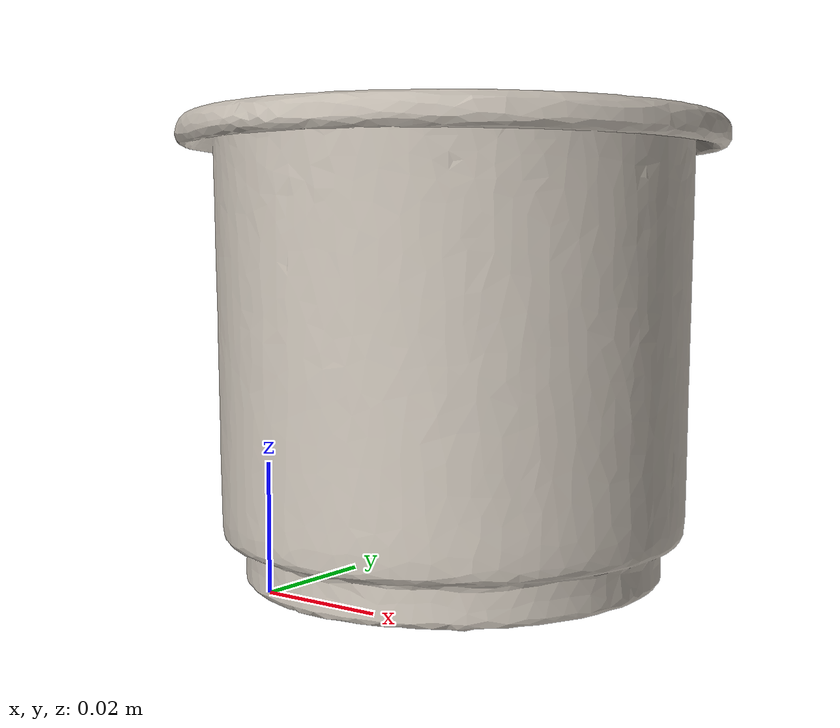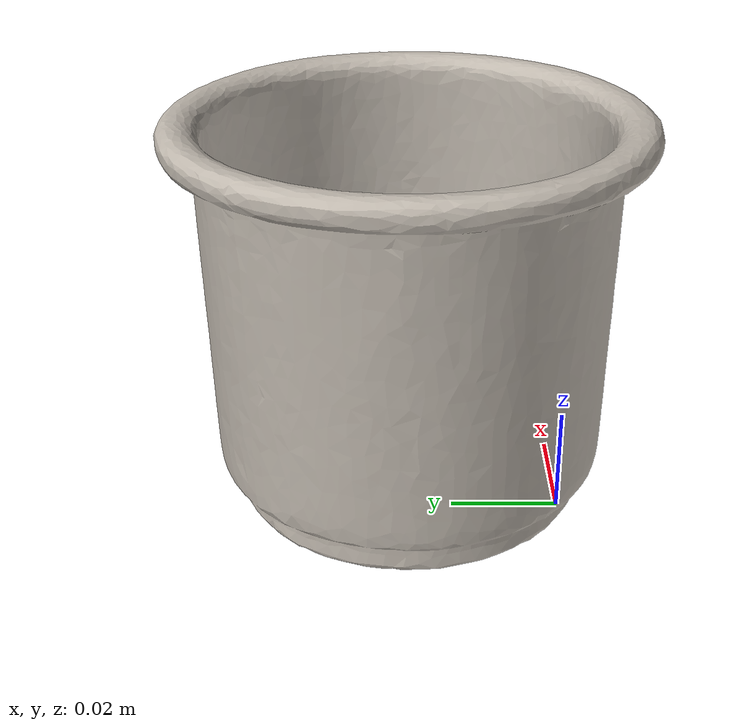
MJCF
<mujoco model="cups_g">
  <compiler angle="radian" meshdir="assets" texturedir="assets"/>
    <default>
        <default class="ycb_col">
            <geom contype="1" conaffinity="1" group="3" rgba=".4 .5 .6 1"/>
        </default>
        <default class="ycb_viz">
            <geom contype="0" conaffinity="0" type="mesh" mass="0"/>
        </default>
    </default>
  <asset>
    <texture type="2d" name="g_cups_tex" file="texture_map.png"/>
    <material name="g_cups_mat" texture="g_cups_tex" specular="0.5" shininess="0.5"/>
    <mesh file="textured.obj" name="g_cups"/>
    <mesh file="textured_collision_0.obj" name="g_cups_collision_0"/>
    <mesh file="textured_collision_1.obj" name="g_cups_collision_1"/>
    <mesh file="textured_collision_2.obj" name="g_cups_collision_2"/>
    <mesh file="textured_collision_3.obj" name="g_cups_collision_3"/>
    <mesh file="textured_collision_4.obj" name="g_cups_collision_4"/>
    <mesh file="textured_collision_5.obj" name="g_cups_collision_5"/>
    <mesh file="textured_collision_6.obj" name="g_cups_collision_6"/>
    <mesh file="textured_collision_7.obj" name="g_cups_collision_7"/>
    <mesh file="textured_collision_8.obj" name="g_cups_collision_8"/>
    <mesh file="textured_collision_9.obj" name="g_cups_collision_9"/>
    <mesh file="textured_collision_10.obj" name="g_cups_collision_10"/>
    <mesh file="textured_collision_11.obj" name="g_cups_collision_11"/>
    <mesh file="textured_collision_12.obj" name="g_cups_collision_12"/>
    <mesh file="textured_collision_13.obj" name="g_cups_collision_13"/>
    <mesh file="textured_collision_14.obj" name="g_cups_collision_14"/>
    <mesh file="textured_collision_15.obj" name="g_cups_collision_15"/>
    <mesh file="textured_collision_16.obj" name="g_cups_collision_16"/>
    <mesh file="textured_collision_17.obj" name="g_cups_collision_17"/>
    <mesh file="textured_collision_18.obj" name="g_cups_collision_18"/>
    <mesh file="textured_collision_19.obj" name="g_cups_collision_19"/>
    <mesh file="textured_collision_20.obj" name="g_cups_collision_20"/>
    <mesh file="textured_collision_21.obj" name="g_cups_collision_21"/>
    <mesh file="textured_collision_22.obj" name="g_cups_collision_22"/>
    <mesh file="textured_collision_23.obj" name="g_cups_collision_23"/>
    <mesh file="textured_collision_24.obj" name="g_cups_collision_24"/>
    <mesh file="textured_collision_25.obj" name="g_cups_collision_25"/>
    <mesh file="textured_collision_26.obj" name="g_cups_collision_26"/>
    <mesh file="textured_collision_27.obj" name="g_cups_collision_27"/>
    <mesh file="textured_collision_28.obj" name="g_cups_collision_28"/>
    <mesh file="textured_collision_29.obj" name="g_cups_collision_29"/>
    <mesh file="textured_collision_30.obj" name="g_cups_collision_30"/>
    <mesh file="textured_collision_31.obj" name="g_cups_collision_31"/>
    <mesh file="textured_collision_32.obj" name="g_cups_collision_32"/>
    <mesh file="textured_collision_33.obj" name="g_cups_collision_33"/>
    <mesh file="textured_collision_34.obj" name="g_cups_collision_34"/>
    <mesh file="textured_collision_35.obj" name="g_cups_collision_35"/>
    <mesh file="textured_collision_36.obj" name="g_cups_collision_36"/>
    <mesh file="textured_collision_37.obj" name="g_cups_collision_37"/>
    <mesh file="textured_collision_38.obj" name="g_cups_collision_38"/>
    <mesh file="textured_collision_39.obj" name="g_cups_collision_39"/>
    <mesh file="textured_collision_40.obj" name="g_cups_collision_40"/>
    <mesh file="textured_collision_41.obj" name="g_cups_collision_41"/>
    <mesh file="textured_collision_42.obj" name="g_cups_collision_42"/>
    <mesh file="textured_collision_43.obj" name="g_cups_collision_43"/>
    <mesh file="textured_collision_44.obj" name="g_cups_collision_44"/>
    <mesh file="textured_collision_45.obj" name="g_cups_collision_45"/>
    <mesh file="textured_collision_46.obj" name="g_cups_collision_46"/>
    <mesh file="textured_collision_47.obj" name="g_cups_collision_47"/>
  </asset>
  <worldbody>
      <geom material="g_cups_mat" mesh="g_cups" class="ycb_viz"/>
      <geom mesh="g_cups_collision_0" class="ycb_col" conaffinity="1" condim="4" friction="0.1 0.1 0.1" mass="0.0002042330107891797" rgba="1 1 1 1" solimp="0.99 0.99 0.01" solref=".001 0.1" type="mesh" group="3"/>
      <geom mesh="g_cups_collision_1" class="ycb_col" conaffinity="1" condim="4" friction="0.1 0.1 0.1" mass="0.00035405280935947396" rgba="1 1 1 1" solimp="0.99 0.99 0.01" solref=".001 0.1" type="mesh" group="3"/>
      <geom mesh="g_cups_collision_2" class="ycb_col" conaffinity="1" condim="4" friction="0.1 0.1 0.1" mass="0.00018009908160218605" rgba="1 1 1 1" solimp="0.99 0.99 0.01" solref=".001 0.1" type="mesh" group="3"/>
      <geom mesh="g_cups_collision_3" class="ycb_col" conaffinity="1" condim="4" friction="0.1 0.1 0.1" mass="0.00034874861607686624" rgba="1 1 1 1" solimp="0.99 0.99 0.01" solref=".001 0.1" type="mesh" group="3"/>
      <geom mesh="g_cups_collision_4" class="ycb_col" conaffinity="1" condim="4" friction="0.1 0.1 0.1" mass="0.0013445690491667968" rgba="1 1 1 1" solimp="0.99 0.99 0.01" solref=".001 0.1" type="mesh" group="3"/>
      <geom mesh="g_cups_collision_5" class="ycb_col" conaffinity="1" condim="4" friction="0.1 0.1 0.1" mass="0.0010697302915126312" rgba="1 1 1 1" solimp="0.99 0.99 0.01" solref=".001 0.1" type="mesh" group="3"/>
      <geom mesh="g_cups_collision_6" class="ycb_col" conaffinity="1" condim="4" friction="0.1 0.1 0.1" mass="0.0011422643360491833" rgba="1 1 1 1" solimp="0.99 0.99 0.01" solref=".001 0.1" type="mesh" group="3"/>
      <geom mesh="g_cups_collision_7" class="ycb_col" conaffinity="1" condim="4" friction="0.1 0.1 0.1" mass="0.0004703729642709619" rgba="1 1 1 1" solimp="0.99 0.99 0.01" solref=".001 0.1" type="mesh" group="3"/>
      <geom mesh="g_cups_collision_8" class="ycb_col" conaffinity="1" condim="4" friction="0.1 0.1 0.1" mass="0.0003146623120150026" rgba="1 1 1 1" solimp="0.99 0.99 0.01" solref=".001 0.1" type="mesh" group="3"/>
      <geom mesh="g_cups_collision_9" class="ycb_col" conaffinity="1" condim="4" friction="0.1 0.1 0.1" mass="0.00035825178270348354" rgba="1 1 1 1" solimp="0.99 0.99 0.01" solref=".001 0.1" type="mesh" group="3"/>
      <geom mesh="g_cups_collision_10" class="ycb_col" conaffinity="1" condim="4" friction="0.1 0.1 0.1" mass="0.0003077000070613198" rgba="1 1 1 1" solimp="0.99 0.99 0.01" solref=".001 0.1" type="mesh" group="3"/>
      <geom mesh="g_cups_collision_11" class="ycb_col" conaffinity="1" condim="4" friction="0.1 0.1 0.1" mass="0.00042123695694920756" rgba="1 1 1 1" solimp="0.99 0.99 0.01" solref=".001 0.1" type="mesh" group="3"/>
      <geom mesh="g_cups_collision_12" class="ycb_col" conaffinity="1" condim="4" friction="0.1 0.1 0.1" mass="0.0003532236188074807" rgba="1 1 1 1" solimp="0.99 0.99 0.01" solref=".001 0.1" type="mesh" group="3"/>
      <geom mesh="g_cups_collision_13" class="ycb_col" conaffinity="1" condim="4" friction="0.1 0.1 0.1" mass="0.00031060997665845137" rgba="1 1 1 1" solimp="0.99 0.99 0.01" solref=".001 0.1" type="mesh" group="3"/>
      <geom mesh="g_cups_collision_14" class="ycb_col" conaffinity="1" condim="4" friction="0.1 0.1 0.1" mass="0.00028458341178685" rgba="1 1 1 1" solimp="0.99 0.99 0.01" solref=".001 0.1" type="mesh" group="3"/>
      <geom mesh="g_cups_collision_15" class="ycb_col" conaffinity="1" condim="4" friction="0.1 0.1 0.1" mass="0.00020386664351578057" rgba="1 1 1 1" solimp="0.99 0.99 0.01" solref=".001 0.1" type="mesh" group="3"/>
      <geom mesh="g_cups_collision_16" class="ycb_col" conaffinity="1" condim="4" friction="0.1 0.1 0.1" mass="0.00019841225371706076" rgba="1 1 1 1" solimp="0.99 0.99 0.01" solref=".001 0.1" type="mesh" group="3"/>
      <geom mesh="g_cups_collision_17" class="ycb_col" conaffinity="1" condim="4" friction="0.1 0.1 0.1" mass="0.0007833069122692014" rgba="1 1 1 1" solimp="0.99 0.99 0.01" solref=".001 0.1" type="mesh" group="3"/>
      <geom mesh="g_cups_collision_18" class="ycb_col" conaffinity="1" condim="4" friction="0.1 0.1 0.1" mass="0.0010000046261614737" rgba="1 1 1 1" solimp="0.99 0.99 0.01" solref=".001 0.1" type="mesh" group="3"/>
      <geom mesh="g_cups_collision_19" class="ycb_col" conaffinity="1" condim="4" friction="0.1 0.1 0.1" mass="0.00016261972240264012" rgba="1 1 1 1" solimp="0.99 0.99 0.01" solref=".001 0.1" type="mesh" group="3"/>
      <geom mesh="g_cups_collision_20" class="ycb_col" conaffinity="1" condim="4" friction="0.1 0.1 0.1" mass="0.00016273787518337131" rgba="1 1 1 1" solimp="0.99 0.99 0.01" solref=".001 0.1" type="mesh" group="3"/>
      <geom mesh="g_cups_collision_21" class="ycb_col" conaffinity="1" condim="4" friction="0.1 0.1 0.1" mass="0.0007980825718148582" rgba="1 1 1 1" solimp="0.99 0.99 0.01" solref=".001 0.1" type="mesh" group="3"/>
      <geom mesh="g_cups_collision_22" class="ycb_col" conaffinity="1" condim="4" friction="0.1 0.1 0.1" mass="0.0010478892992087903" rgba="1 1 1 1" solimp="0.99 0.99 0.01" solref=".001 0.1" type="mesh" group="3"/>
      <geom mesh="g_cups_collision_23" class="ycb_col" conaffinity="1" condim="4" friction="0.1 0.1 0.1" mass="0.0010984846665807004" rgba="1 1 1 1" solimp="0.99 0.99 0.01" solref=".001 0.1" type="mesh" group="3"/>
      <geom mesh="g_cups_collision_24" class="ycb_col" conaffinity="1" condim="4" friction="0.1 0.1 0.1" mass="0.0010184717295339445" rgba="1 1 1 1" solimp="0.99 0.99 0.01" solref=".001 0.1" type="mesh" group="3"/>
      <geom mesh="g_cups_collision_25" class="ycb_col" conaffinity="1" condim="4" friction="0.1 0.1 0.1" mass="0.0001646013526913005" rgba="1 1 1 1" solimp="0.99 0.99 0.01" solref=".001 0.1" type="mesh" group="3"/>
      <geom mesh="g_cups_collision_26" class="ycb_col" conaffinity="1" condim="4" friction="0.1 0.1 0.1" mass="0.00021900505662361165" rgba="1 1 1 1" solimp="0.99 0.99 0.01" solref=".001 0.1" type="mesh" group="3"/>
      <geom mesh="g_cups_collision_27" class="ycb_col" conaffinity="1" condim="4" friction="0.1 0.1 0.1" mass="0.00038083679138125714" rgba="1 1 1 1" solimp="0.99 0.99 0.01" solref=".001 0.1" type="mesh" group="3"/>
      <geom mesh="g_cups_collision_28" class="ycb_col" conaffinity="1" condim="4" friction="0.1 0.1 0.1" mass="0.0009103825465587219" rgba="1 1 1 1" solimp="0.99 0.99 0.01" solref=".001 0.1" type="mesh" group="3"/>
      <geom mesh="g_cups_collision_29" class="ycb_col" conaffinity="1" condim="4" friction="0.1 0.1 0.1" mass="0.0006172044517389138" rgba="1 1 1 1" solimp="0.99 0.99 0.01" solref=".001 0.1" type="mesh" group="3"/>
      <geom mesh="g_cups_collision_30" class="ycb_col" conaffinity="1" condim="4" friction="0.1 0.1 0.1" mass="0.0010760753779106096" rgba="1 1 1 1" solimp="0.99 0.99 0.01" solref=".001 0.1" type="mesh" group="3"/>
      <geom mesh="g_cups_collision_31" class="ycb_col" conaffinity="1" condim="4" friction="0.1 0.1 0.1" mass="0.00017991429934878167" rgba="1 1 1 1" solimp="0.99 0.99 0.01" solref=".001 0.1" type="mesh" group="3"/>
      <geom mesh="g_cups_collision_32" class="ycb_col" conaffinity="1" condim="4" friction="0.1 0.1 0.1" mass="0.00016738302730514906" rgba="1 1 1 1" solimp="0.99 0.99 0.01" solref=".001 0.1" type="mesh" group="3"/>
      <geom mesh="g_cups_collision_33" class="ycb_col" conaffinity="1" condim="4" friction="0.1 0.1 0.1" mass="0.0006679827279529142" rgba="1 1 1 1" solimp="0.99 0.99 0.01" solref=".001 0.1" type="mesh" group="3"/>
      <geom mesh="g_cups_collision_34" class="ycb_col" conaffinity="1" condim="4" friction="0.1 0.1 0.1" mass="0.0007032383480443024" rgba="1 1 1 1" solimp="0.99 0.99 0.01" solref=".001 0.1" type="mesh" group="3"/>
      <geom mesh="g_cups_collision_35" class="ycb_col" conaffinity="1" condim="4" friction="0.1 0.1 0.1" mass="0.0012777091416907521" rgba="1 1 1 1" solimp="0.99 0.99 0.01" solref=".001 0.1" type="mesh" group="3"/>
      <geom mesh="g_cups_collision_36" class="ycb_col" conaffinity="1" condim="4" friction="0.1 0.1 0.1" mass="0.0008636568402204758" rgba="1 1 1 1" solimp="0.99 0.99 0.01" solref=".001 0.1" type="mesh" group="3"/>
      <geom mesh="g_cups_collision_37" class="ycb_col" conaffinity="1" condim="4" friction="0.1 0.1 0.1" mass="0.0005858378558516074" rgba="1 1 1 1" solimp="0.99 0.99 0.01" solref=".001 0.1" type="mesh" group="3"/>
      <geom mesh="g_cups_collision_38" class="ycb_col" conaffinity="1" condim="4" friction="0.1 0.1 0.1" mass="0.000860755531236969" rgba="1 1 1 1" solimp="0.99 0.99 0.01" solref=".001 0.1" type="mesh" group="3"/>
      <geom mesh="g_cups_collision_39" class="ycb_col" conaffinity="1" condim="4" friction="0.1 0.1 0.1" mass="0.0004617803703632374" rgba="1 1 1 1" solimp="0.99 0.99 0.01" solref=".001 0.1" type="mesh" group="3"/>
      <geom mesh="g_cups_collision_40" class="ycb_col" conaffinity="1" condim="4" friction="0.1 0.1 0.1" mass="0.0010092437021510608" rgba="1 1 1 1" solimp="0.99 0.99 0.01" solref=".001 0.1" type="mesh" group="3"/>
      <geom mesh="g_cups_collision_41" class="ycb_col" conaffinity="1" condim="4" friction="0.1 0.1 0.1" mass="0.0009613698924096378" rgba="1 1 1 1" solimp="0.99 0.99 0.01" solref=".001 0.1" type="mesh" group="3"/>
      <geom mesh="g_cups_collision_42" class="ycb_col" conaffinity="1" condim="4" friction="0.1 0.1 0.1" mass="0.0005848140330534969" rgba="1 1 1 1" solimp="0.99 0.99 0.01" solref=".001 0.1" type="mesh" group="3"/>
      <geom mesh="g_cups_collision_43" class="ycb_col" conaffinity="1" condim="4" friction="0.1 0.1 0.1" mass="0.0003734140187082689" rgba="1 1 1 1" solimp="0.99 0.99 0.01" solref=".001 0.1" type="mesh" group="3"/>
      <geom mesh="g_cups_collision_44" class="ycb_col" conaffinity="1" condim="4" friction="0.1 0.1 0.1" mass="0.0006906647979577393" rgba="1 1 1 1" solimp="0.99 0.99 0.01" solref=".001 0.1" type="mesh" group="3"/>
      <geom mesh="g_cups_collision_45" class="ycb_col" conaffinity="1" condim="4" friction="0.1 0.1 0.1" mass="0.00047782689120706565" rgba="1 1 1 1" solimp="0.99 0.99 0.01" solref=".001 0.1" type="mesh" group="3"/>
      <geom mesh="g_cups_collision_46" class="ycb_col" conaffinity="1" condim="4" friction="0.1 0.1 0.1" mass="0.0003052735490511276" rgba="1 1 1 1" solimp="0.99 0.99 0.01" solref=".001 0.1" type="mesh" group="3"/>
      <geom mesh="g_cups_collision_47" class="ycb_col" conaffinity="1" condim="4" friction="0.1 0.1 0.1" mass="0.0005228148713461027" rgba="1 1 1 1" solimp="0.99 0.99 0.01" solref=".001 0.1" type="mesh" group="3"/>
  </worldbody>
</mujoco>
